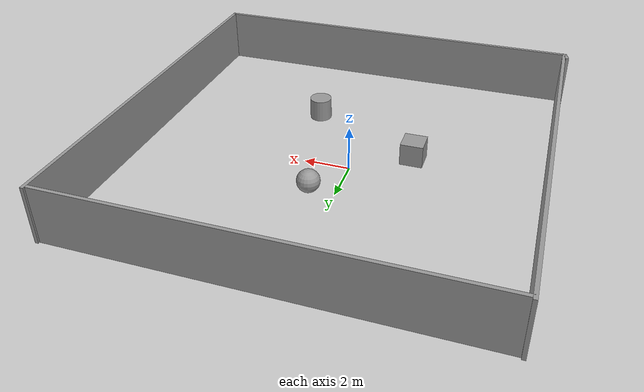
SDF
<sdf version="1.7">
 <world name="default">
  <light name="sun" type="directional">
   <pose>0 0 10 0 -0 0</pose>
   <diffuse>0.8 0.8 0.8 1</diffuse>
   <specular>0.2 0.2 0.2 1</specular>
   <attenuation>
    <range>1000</range>
    <constant>0.9</constant>
    <linear>0.01</linear>
    <quadratic>0.001</quadratic>
   </attenuation>
   <direction>-0.5 0.1 -0.9</direction>
   <spot><inner_angle>0</inner_angle><outer_angle>0</outer_angle><falloff>0</falloff></spot>
  </light>
  <model name="ground_plane">
   <static>1</static>
   <link name="link">
    <collision name="collision">
     <geometry><plane><normal>0 0 1</normal><size>100 100</size></plane></geometry>
     <surface>
      <contact><collide_bitmask>65535</collide_bitmask></contact>
      <friction><ode><mu>100</mu><mu2>50</mu2></ode></friction>
     </surface>
    </collision>
    <visual name="visual">
     <cast_shadows>0</cast_shadows>
     <geometry><plane><normal>0 0 1</normal><size>100 100</size></plane></geometry>
     <material>
      <script><uri>file://media/materials/scripts/gazebo.material</uri><name>Gazebo/Grey</name></script>
     </material>
    </visual>
   </link>
  </model>
  <gravity>0 0 -9.8</gravity>
  <magnetic_field>6e-06 2.3e-05 -4.2e-05</magnetic_field>
  <atmosphere type="adiabatic"/>
  <physics type="ode">
   <max_step_size>0.001</max_step_size>
   <real_time_factor>1</real_time_factor>
   <real_time_update_rate>1000</real_time_update_rate>
  </physics>
  <scene><ambient>0.4 0.4 0.4 1</ambient><background>0.7 0.7 0.7 1</background><shadows>1</shadows></scene>
  <spherical_coordinates>
   <surface_model>EARTH_WGS84</surface_model>
   <latitude_deg>0</latitude_deg>
   <longitude_deg>0</longitude_deg>
   <elevation>0</elevation>
   <heading_deg>0</heading_deg>
  </spherical_coordinates>
  <model name="room">
   <pose>-57107.8 19494.3 0 0 -0 0</pose>
   <link name="Wall_0">
    <collision name="Wall_0_Collision">
     <geometry><box><size>560.75 0.15 2.5</size></box></geometry>
     <pose>0 0 1.25 0 -0 0</pose>
    </collision>
    <visual name="Wall_0_Visual">
     <pose>0 0 1.25 0 -0 0</pose>
     <geometry><box><size>560.75 0.15 2.5</size></box></geometry>
     <material>
      <script><uri>file://media/materials/scripts/gazebo.material</uri><name>Gazebo/Grey</name></script>
      <ambient>1 1 1 1</ambient>
     </material>
     <meta><layer>0</layer></meta>
    </visual>
    <pose>-56846.5 19774.9 0 0 -0 2.87979</pose>
   </link>
   <link name="Wall_1">
    <collision name="Wall_1_Collision">
     <geometry><box><size>952.5 0.15 2.5</size></box></geometry>
     <pose>0 0 1.25 0 -0 0</pose>
    </collision>
    <visual name="Wall_1_Visual">
     <pose>0 0 1.25 0 -0 0</pose>
     <geometry><box><size>952.5 0.15 2.5</size></box></geometry>
     <material>
      <script><uri>file://media/materials/scripts/gazebo.material</uri><name>Gazebo/Grey</name></script>
      <ambient>1 1 1 1</ambient>
     </material>
     <meta><layer>0</layer></meta>
    </visual>
    <pose>-56657.3 19724.2 0 0 -0 -0.261799</pose>
   </link>
   <link name="Wall_10">
    <collision name="Wall_10_Collision">
     <geometry><box><size>0.16 0.15 2.5</size></box></geometry>
     <pose>0 0 1.25 0 -0 0</pose>
    </collision>
    <visual name="Wall_10_Visual">
     <pose>0 0 1.25 0 -0 0</pose>
     <geometry><box><size>0.16 0.15 2.5</size></box></geometry>
     <material>
      <script><uri>file://media/materials/scripts/gazebo.material</uri><name>Gazebo/Grey</name></script>
      <ambient>0 0 0 1</ambient>
     </material>
     <meta><layer>0</layer></meta>
    </visual>
    <pose>57099.7 -19503.5 0 0 -0 0</pose>
   </link>
   <link name="Wall_11">
    <collision name="Wall_11_Collision">
     <geometry><box><size>17.5 0.15 2.5</size></box></geometry>
     <pose>0 0 1.25 0 -0 0</pose>
    </collision>
    <visual name="Wall_11_Visual">
     <pose>0 0 1.25 0 -0 0</pose>
     <geometry><box><size>17.5 0.15 2.5</size></box></geometry>
     <material>
      <script><uri>file://media/materials/scripts/gazebo.material</uri><name>Gazebo/Grey</name></script>
      <ambient>1 1 1 1</ambient>
     </material>
     <meta><layer>0</layer></meta>
    </visual>
    <pose>57099.7 -19494.8 0 0 -0 1.5708</pose>
   </link>
   <link name="Wall_12">
    <collision name="Wall_12_Collision">
     <geometry><box><size>17.75 0.15 2.5</size></box></geometry>
     <pose>0 0 1.25 0 -0 0</pose>
    </collision>
    <visual name="Wall_12_Visual">
     <pose>0 0 1.25 0 -0 0</pose>
     <geometry><box><size>17.75 0.15 2.5</size></box></geometry>
     <material>
      <script><uri>file://media/materials/scripts/gazebo.material</uri><name>Gazebo/Grey</name></script>
      <ambient>1 1 1 1</ambient>
     </material>
     <meta><layer>0</layer></meta>
    </visual>
    <pose>57108.5 -19486.2 0 0 -0 0</pose>
   </link>
   <link name="Wall_13">
    <collision name="Wall_13_Collision">
     <geometry><box><size>17.5 0.15 2.5</size></box></geometry>
     <pose>0 0 1.25 0 -0 0</pose>
    </collision>
    <visual name="Wall_13_Visual">
     <pose>0 0 1.25 0 -0 0</pose>
     <geometry><box><size>17.5 0.15 2.5</size></box></geometry>
     <material>
      <script><uri>file://media/materials/scripts/gazebo.material</uri><name>Gazebo/Grey</name></script>
      <ambient>1 1 1 1</ambient>
     </material>
     <meta><layer>0</layer></meta>
    </visual>
    <pose>57117.3 -19494.8 0 0 -0 -1.5708</pose>
   </link>
   <link name="Wall_14">
    <collision name="Wall_14_Collision">
     <geometry><box><size>17.75 0.15 2.5</size></box></geometry>
     <pose>0 0 1.25 0 -0 0</pose>
    </collision>
    <visual name="Wall_14_Visual">
     <pose>0 0 1.25 0 -0 0</pose>
     <geometry><box><size>17.75 0.15 2.5</size></box></geometry>
     <material>
      <script><uri>file://media/materials/scripts/gazebo.material</uri><name>Gazebo/Grey</name></script>
      <ambient>1 1 1 1</ambient>
     </material>
     <meta><layer>0</layer></meta>
    </visual>
    <pose>57108.5 -19503.5 0 0 -0 3.14159</pose>
   </link>
   <link name="Wall_15">
    <collision name="Wall_15_Collision">
     <geometry><box><size>0.5 0.15 2.5</size></box></geometry>
     <pose>0 0 1.25 0 -0 0</pose>
    </collision>
    <visual name="Wall_15_Visual">
     <pose>0 0 1.25 0 -0 0</pose>
     <geometry><box><size>0.5 0.15 2.5</size></box></geometry>
     <material>
      <script><uri>file://media/materials/scripts/gazebo.material</uri><name>Gazebo/Grey</name></script>
      <ambient>1 1 1 1</ambient>
     </material>
     <meta><layer>0</layer></meta>
    </visual>
    <pose>57099.6 -19503.3 0 0 -0 1.8326</pose>
   </link>
   <link name="Wall_3">
    <collision name="Wall_3_Collision">
     <geometry><box><size>33315.2 0.15 2.5</size></box></geometry>
     <pose>0 0 1.25 0 -0 0</pose>
    </collision>
    <visual name="Wall_3_Visual">
     <pose>0 0 1.25 0 -0 0</pose>
     <geometry><box><size>33315.2 0.15 2.5</size></box></geometry>
     <material>
      <script><uri>file://media/materials/scripts/gazebo.material</uri><name>Gazebo/Grey</name></script>
      <ambient>1 1 1 1</ambient>
     </material>
     <meta><layer>0</layer></meta>
    </visual>
    <pose>-35233 9777.37 0 0 -0 -0.523599</pose>
   </link>
   <link name="Wall_4">
    <collision name="Wall_4_Collision">
     <geometry><box><size>34790.2 0.15 2.5</size></box></geometry>
     <pose>0 0 1.25 0 -0 0</pose>
    </collision>
    <visual name="Wall_4_Visual">
     <pose>0 0 1.25 0 -0 0</pose>
     <geometry><box><size>34790.2 0.15 2.5</size></box></geometry>
     <material>
      <script><uri>file://media/materials/scripts/gazebo.material</uri><name>Gazebo/Grey</name></script>
      <ambient>1 1 1 1</ambient>
     </material>
     <meta><layer>0</layer></meta>
    </visual>
    <pose>-3412.07 1448.59 0 0 -0 0</pose>
   </link>
   <link name="Wall_6">
    <collision name="Wall_6_Collision">
     <geometry><box><size>6776.75 0.15 2.5</size></box></geometry>
     <pose>0 0 1.25 0 -0 0</pose>
    </collision>
    <visual name="Wall_6_Visual">
     <pose>0 0 1.25 0 -0 0</pose>
     <geometry><box><size>6776.75 0.15 2.5</size></box></geometry>
     <material>
      <script><uri>file://media/materials/scripts/gazebo.material</uri><name>Gazebo/Grey</name></script>
      <ambient>1 1 1 1</ambient>
     </material>
     <meta><layer>0</layer></meta>
    </visual>
    <pose>-972.726 -2557.54 0 0 -0 -0.785398</pose>
   </link>
   <link name="Wall_7">
    <collision name="Wall_7_Collision">
     <geometry><box><size>57546.2 0.15 2.5</size></box></geometry>
     <pose>0 0 1.25 0 -0 0</pose>
    </collision>
    <visual name="Wall_7_Visual">
     <pose>0 0 1.25 0 -0 0</pose>
     <geometry><box><size>57546.2 0.15 2.5</size></box></geometry>
     <material>
      <script><uri>file://media/materials/scripts/gazebo.material</uri><name>Gazebo/Grey</name></script>
      <ambient>1 1 1 1</ambient>
     </material>
     <meta><layer>0</layer></meta>
    </visual>
    <pose>29215.8 -12400.4 0 0 -0 -0.261799</pose>
   </link>
   <static>1</static>
  </model>
  <model name="unit_box">
   <pose>-2.45432 -1.51638 0.499995 0 1e-05 0</pose>
   <link name="link">
    <inertial>
     <mass>1</mass>
     <inertia>
      <ixx>0.166667</ixx>
      <ixy>0</ixy>
      <ixz>0</ixz>
      <iyy>0.166667</iyy>
      <iyz>0</iyz>
      <izz>0.166667</izz>
     </inertia>
    </inertial>
    <collision name="collision"><geometry><box><size>1 1 1</size></box></geometry></collision>
    <visual name="visual">
     <geometry><box><size>1 1 1</size></box></geometry>
     <material>
      <script><name>Gazebo/Grey</name><uri>file://media/materials/scripts/gazebo.material</uri></script>
     </material>
    </visual>
   </link>
  </model>
  <model name="unit_sphere">
   <pose>1.10027 2.03822 0.5 0 -0 0</pose>
   <link name="link">
    <inertial>
     <mass>1</mass>
     <inertia><ixx>0.1</ixx><ixy>0</ixy><ixz>0</ixz><iyy>0.1</iyy><iyz>0</iyz><izz>0.1</izz></inertia>
    </inertial>
    <collision name="collision"><geometry><sphere><radius>0.5</radius></sphere></geometry></collision>
    <visual name="visual">
     <geometry><sphere><radius>0.5</radius></sphere></geometry>
     <material>
      <script><name>Gazebo/Grey</name><uri>file://media/materials/scripts/gazebo.material</uri></script>
     </material>
    </visual>
   </link>
  </model>
  <model name="unit_cylinder">
   <pose>2.65147 -3.9622 0.499997 3e-06 4e-06 -0</pose>
   <link name="link">
    <inertial>
     <mass>1</mass>
     <inertia><ixx>0.145833</ixx><ixy>0</ixy><ixz>0</ixz><iyy>0.145833</iyy><iyz>0</iyz><izz>0.125</izz></inertia>
    </inertial>
    <collision name="collision">
     <geometry><cylinder><radius>0.5</radius><length>1</length></cylinder></geometry>
    </collision>
    <visual name="visual">
     <geometry><cylinder><radius>0.5</radius><length>1</length></cylinder></geometry>
     <material>
      <script><name>Gazebo/Grey</name><uri>file://media/materials/scripts/gazebo.material</uri></script>
     </material>
    </visual>
   </link>
  </model>
 </world>
</sdf>
